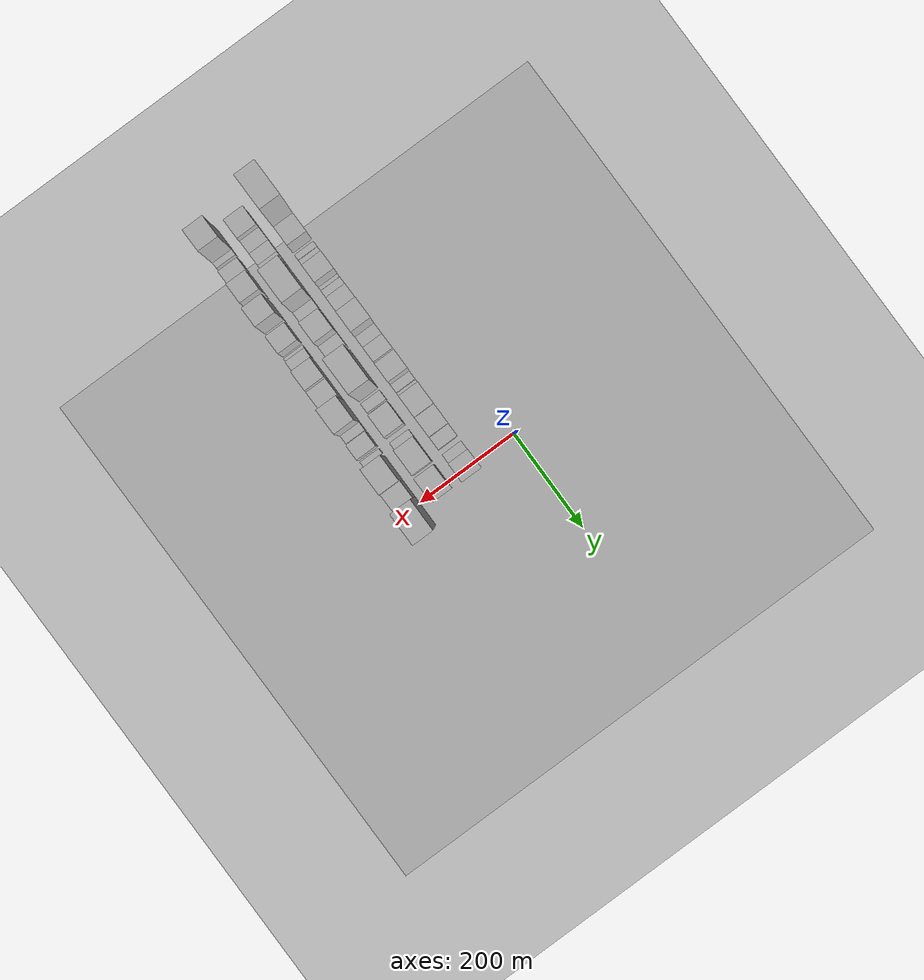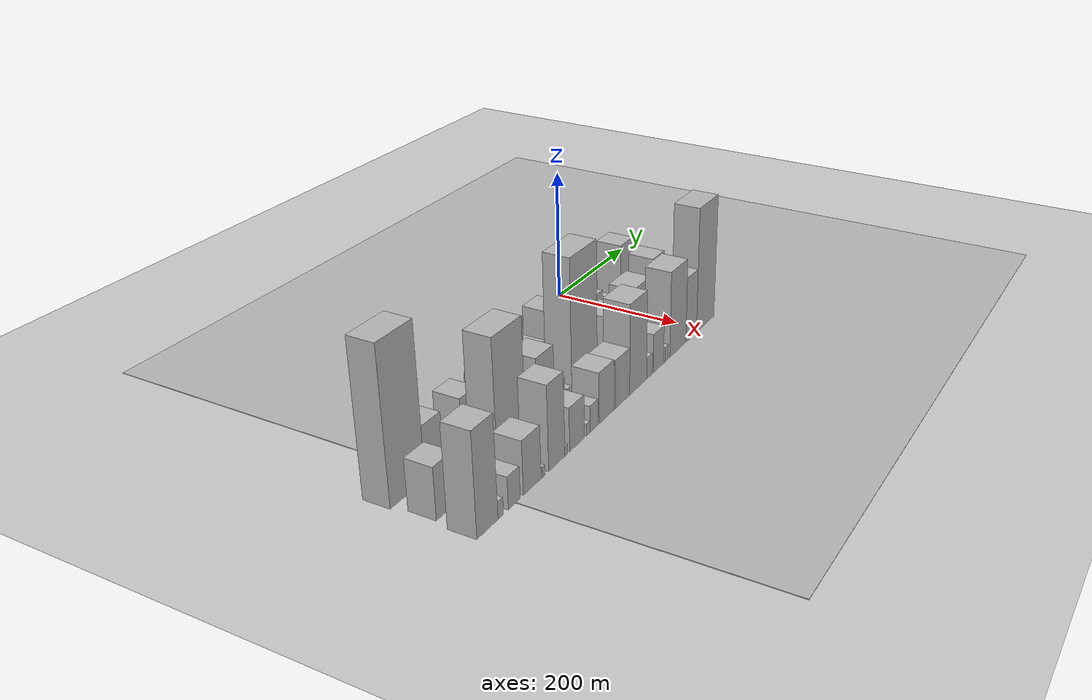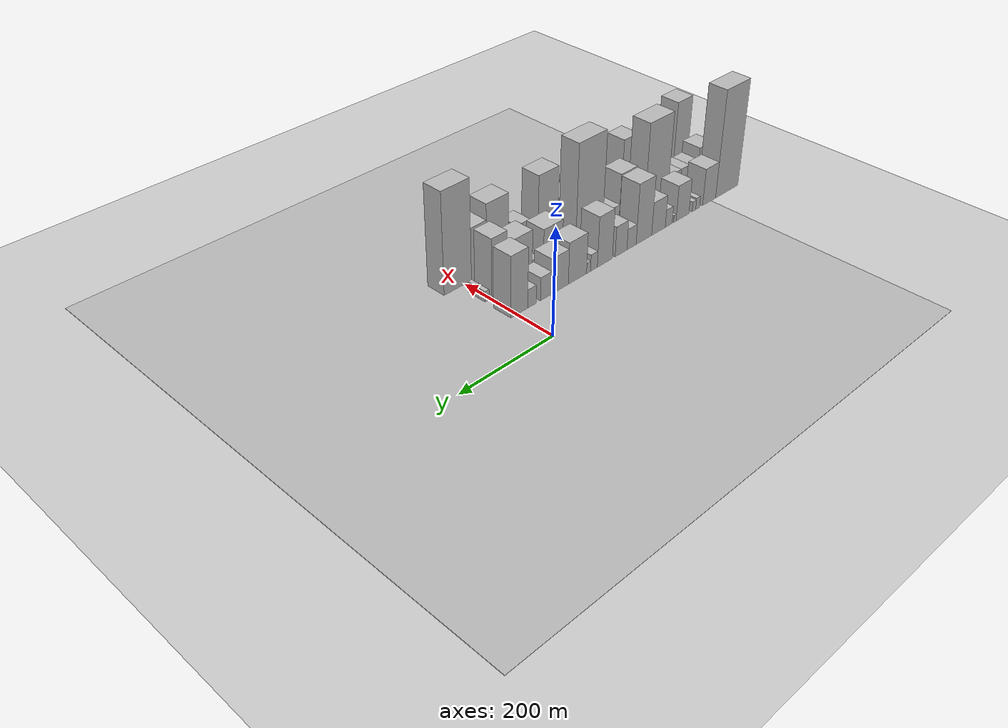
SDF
<sdf version="1.6">
 <world name="default">
  <include><name>ground_plane_1</name><uri>model://HANNAS_ground_plane</uri></include>
  <include>
   <name>ground_plane_2</name>
   <uri>model://HANNAS_ground_plane</uri>
   <pose>100 0 0  0 0 0</pose>
  </include>
  <model name="building_1">
   <static>1</static>
   <pose>100.0000 -546.4433 0 0.000000 0.000000 0.000000</pose>
   <link name="link">
    <pose>0 0 108.00 0 0 0</pose>
    <collision name="collision"><geometry><box><size>40.0000 67.1135 216.0000</size></box></geometry></collision>
    <visual name="visual">
     <cast_shadows>0</cast_shadows>
     <geometry><box><size>40.0000 67.1135 216.0000</size></box></geometry>
     <material>
      <script>
       <uri>model://HANNAS_wall/materials/scripts</uri>
       <uri>model://HANNAS_wall/materials/textures</uri>
       <name>vrc/HANNAS_wall</name>
      </script>
     </material>
    </visual>
   </link>
  </model>
  <model name="building_2">
   <static>1</static>
   <pose>100.0000 -493.9066 0 0.000000 0.000000 0.000000</pose>
   <link name="link">
    <pose>0 0 37.50 0 0 0</pose>
    <collision name="collision"><geometry><box><size>40.0000 37.9599 75.0000</size></box></geometry></collision>
    <visual name="visual">
     <cast_shadows>0</cast_shadows>
     <geometry><box><size>40.0000 37.9599 75.0000</size></box></geometry>
     <material>
      <script>
       <uri>model://HANNAS_wall/materials/scripts</uri>
       <uri>model://HANNAS_wall/materials/textures</uri>
       <name>vrc/HANNAS_wall</name>
      </script>
     </material>
    </visual>
   </link>
  </model>
  <model name="building_3">
   <static>1</static>
   <pose>100.0000 -460.3726 0 0.000000 0.000000 0.000000</pose>
   <link name="link">
    <pose>0 0 12.00 0 0 0</pose>
    <collision name="collision"><geometry><box><size>40.0000 11.1080 24.0000</size></box></geometry></collision>
    <visual name="visual">
     <cast_shadows>0</cast_shadows>
     <geometry><box><size>40.0000 11.1080 24.0000</size></box></geometry>
     <material>
      <script>
       <uri>model://HANNAS_wall/materials/scripts</uri>
       <uri>model://HANNAS_wall/materials/textures</uri>
       <name>vrc/HANNAS_wall</name>
      </script>
     </material>
    </visual>
   </link>
  </model>
  <model name="building_4">
   <static>1</static>
   <pose>100.0000 -449.6545 0 0.000000 0.000000 0.000000</pose>
   <link name="link">
    <pose>0 0 10.50 0 0 0</pose>
    <collision name="collision"><geometry><box><size>40.0000 10.3283 21.0000</size></box></geometry></collision>
    <visual name="visual">
     <cast_shadows>0</cast_shadows>
     <geometry><box><size>40.0000 10.3283 21.0000</size></box></geometry>
     <material>
      <script>
       <uri>model://HANNAS_wall/materials/scripts</uri>
       <uri>model://HANNAS_wall/materials/textures</uri>
       <name>vrc/HANNAS_wall</name>
      </script>
     </material>
    </visual>
   </link>
  </model>
  <model name="building_5">
   <static>1</static>
   <pose>100.0000 -417.2643 0 0.000000 0.000000 0.000000</pose>
   <link name="link">
    <pose>0 0 36.00 0 0 0</pose>
    <collision name="collision"><geometry><box><size>40.0000 36.4522 72.0000</size></box></geometry></collision>
    <visual name="visual">
     <cast_shadows>0</cast_shadows>
     <geometry><box><size>40.0000 36.4522 72.0000</size></box></geometry>
     <material>
      <script>
       <uri>model://HANNAS_wall/materials/scripts</uri>
       <uri>model://HANNAS_wall/materials/textures</uri>
       <name>vrc/HANNAS_wall</name>
      </script>
     </material>
    </visual>
   </link>
  </model>
  <model name="building_6">
   <static>1</static>
   <pose>100.0000 -395.6459 0 0.000000 0.000000 0.000000</pose>
   <link name="link">
    <pose>0 0 7.50 0 0 0</pose>
    <collision name="collision"><geometry><box><size>40.0000 6.7845 15.0000</size></box></geometry></collision>
    <visual name="visual">
     <cast_shadows>0</cast_shadows>
     <geometry><box><size>40.0000 6.7845 15.0000</size></box></geometry>
     <material>
      <script>
       <uri>model://HANNAS_wall/materials/scripts</uri>
       <uri>model://HANNAS_wall/materials/textures</uri>
       <name>vrc/HANNAS_wall</name>
      </script>
     </material>
    </visual>
   </link>
  </model>
  <model name="building_7">
   <static>1</static>
   <pose>100.0000 -378.6369 0 0.000000 0.000000 0.000000</pose>
   <link name="link">
    <pose>0 0 18.00 0 0 0</pose>
    <collision name="collision"><geometry><box><size>40.0000 19.2335 36.0000</size></box></geometry></collision>
    <visual name="visual">
     <cast_shadows>0</cast_shadows>
     <geometry><box><size>40.0000 19.2335 36.0000</size></box></geometry>
     <material>
      <script>
       <uri>model://HANNAS_wall/materials/scripts</uri>
       <uri>model://HANNAS_wall/materials/textures</uri>
       <name>vrc/HANNAS_wall</name>
      </script>
     </material>
    </visual>
   </link>
  </model>
  <model name="building_8">
   <static>1</static>
   <pose>100.0000 -350.5014 0 0.000000 0.000000 0.000000</pose>
   <link name="link">
    <pose>0 0 33.00 0 0 0</pose>
    <collision name="collision"><geometry><box><size>40.0000 37.0376 66.0000</size></box></geometry></collision>
    <visual name="visual">
     <cast_shadows>0</cast_shadows>
     <geometry><box><size>40.0000 37.0376 66.0000</size></box></geometry>
     <material>
      <script>
       <uri>model://HANNAS_wall/materials/scripts</uri>
       <uri>model://HANNAS_wall/materials/textures</uri>
       <name>vrc/HANNAS_wall</name>
      </script>
     </material>
    </visual>
   </link>
  </model>
  <model name="building_9">
   <static>1</static>
   <pose>100.0000 -311.1250 0 0.000000 0.000000 0.000000</pose>
   <link name="link">
    <pose>0 0 60.00 0 0 0</pose>
    <collision name="collision"><geometry><box><size>40.0000 41.7151 120.0000</size></box></geometry></collision>
    <visual name="visual">
     <cast_shadows>0</cast_shadows>
     <geometry><box><size>40.0000 41.7151 120.0000</size></box></geometry>
     <material>
      <script>
       <uri>model://HANNAS_wall/materials/scripts</uri>
       <uri>model://HANNAS_wall/materials/textures</uri>
       <name>vrc/HANNAS_wall</name>
      </script>
     </material>
    </visual>
   </link>
  </model>
  <model name="building_10">
   <static>1</static>
   <pose>100.0000 -278.2052 0 0.000000 0.000000 0.000000</pose>
   <link name="link">
    <pose>0 0 21.00 0 0 0</pose>
    <collision name="collision"><geometry><box><size>40.0000 24.1245 42.0000</size></box></geometry></collision>
    <visual name="visual">
     <cast_shadows>0</cast_shadows>
     <geometry><box><size>40.0000 24.1245 42.0000</size></box></geometry>
     <material>
      <script>
       <uri>model://HANNAS_wall/materials/scripts</uri>
       <uri>model://HANNAS_wall/materials/textures</uri>
       <name>vrc/HANNAS_wall</name>
      </script>
     </material>
    </visual>
   </link>
  </model>
  <model name="building_11">
   <static>1</static>
   <pose>100.0000 -250.9909 0 0.000000 0.000000 0.000000</pose>
   <link name="link">
    <pose>0 0 30.00 0 0 0</pose>
    <collision name="collision"><geometry><box><size>40.0000 30.3041 60.0000</size></box></geometry></collision>
    <visual name="visual">
     <cast_shadows>0</cast_shadows>
     <geometry><box><size>40.0000 30.3041 60.0000</size></box></geometry>
     <material>
      <script>
       <uri>model://HANNAS_wall/materials/scripts</uri>
       <uri>model://HANNAS_wall/materials/textures</uri>
       <name>vrc/HANNAS_wall</name>
      </script>
     </material>
    </visual>
   </link>
  </model>
  <model name="building_12">
   <static>1</static>
   <pose>100.0000 -209.8831 0 0.000000 0.000000 0.000000</pose>
   <link name="link">
    <pose>0 0 49.50 0 0 0</pose>
    <collision name="collision"><geometry><box><size>40.0000 37.9116 99.0000</size></box></geometry></collision>
    <visual name="visual">
     <cast_shadows>0</cast_shadows>
     <geometry><box><size>40.0000 37.9116 99.0000</size></box></geometry>
     <material>
      <script>
       <uri>model://HANNAS_wall/materials/scripts</uri>
       <uri>model://HANNAS_wall/materials/textures</uri>
       <name>vrc/HANNAS_wall</name>
      </script>
     </material>
    </visual>
   </link>
  </model>
  <model name="building_13">
   <static>1</static>
   <pose>100.0000 -182.4297 0 0.000000 0.000000 0.000000</pose>
   <link name="link">
    <pose>0 0 16.50 0 0 0</pose>
    <collision name="collision"><geometry><box><size>40.0000 16.9952 33.0000</size></box></geometry></collision>
    <visual name="visual">
     <cast_shadows>0</cast_shadows>
     <geometry><box><size>40.0000 16.9952 33.0000</size></box></geometry>
     <material>
      <script>
       <uri>model://HANNAS_wall/materials/scripts</uri>
       <uri>model://HANNAS_wall/materials/textures</uri>
       <name>vrc/HANNAS_wall</name>
      </script>
     </material>
    </visual>
   </link>
  </model>
  <model name="building_14">
   <static>1</static>
   <pose>100.0000 -169.0373 0 0.000000 0.000000 0.000000</pose>
   <link name="link">
    <pose>0 0 10.50 0 0 0</pose>
    <collision name="collision"><geometry><box><size>40.0000 9.7896 21.0000</size></box></geometry></collision>
    <visual name="visual">
     <cast_shadows>0</cast_shadows>
     <geometry><box><size>40.0000 9.7896 21.0000</size></box></geometry>
     <material>
      <script>
       <uri>model://HANNAS_wall/materials/scripts</uri>
       <uri>model://HANNAS_wall/materials/textures</uri>
       <name>vrc/HANNAS_wall</name>
      </script>
     </material>
    </visual>
   </link>
  </model>
  <model name="building_15">
   <static>1</static>
   <pose>100.0000 -141.9730 0 0.000000 0.000000 0.000000</pose>
   <link name="link">
    <pose>0 0 40.50 0 0 0</pose>
    <collision name="collision"><geometry><box><size>40.0000 44.3388 81.0000</size></box></geometry></collision>
    <visual name="visual">
     <cast_shadows>0</cast_shadows>
     <geometry><box><size>40.0000 44.3388 81.0000</size></box></geometry>
     <material>
      <script>
       <uri>model://HANNAS_wall/materials/scripts</uri>
       <uri>model://HANNAS_wall/materials/textures</uri>
       <name>vrc/HANNAS_wall</name>
      </script>
     </material>
    </visual>
   </link>
  </model>
  <model name="building_16">
   <static>1</static>
   <pose>100.0000 -99.6615 0 0.000000 0.000000 0.000000</pose>
   <link name="link">
    <pose>0 0 34.50 0 0 0</pose>
    <collision name="collision"><geometry><box><size>40.0000 40.2842 69.0000</size></box></geometry></collision>
    <visual name="visual">
     <cast_shadows>0</cast_shadows>
     <geometry><box><size>40.0000 40.2842 69.0000</size></box></geometry>
     <material>
      <script>
       <uri>model://HANNAS_wall/materials/scripts</uri>
       <uri>model://HANNAS_wall/materials/textures</uri>
       <name>vrc/HANNAS_wall</name>
      </script>
     </material>
    </visual>
   </link>
  </model>
  <model name="building_17">
   <static>1</static>
   <pose>100.0000 -66.7461 0 0.000000 0.000000 0.000000</pose>
   <link name="link">
    <pose>0 0 22.50 0 0 0</pose>
    <collision name="collision"><geometry><box><size>40.0000 25.5467 45.0000</size></box></geometry></collision>
    <visual name="visual">
     <cast_shadows>0</cast_shadows>
     <geometry><box><size>40.0000 25.5467 45.0000</size></box></geometry>
     <material>
      <script>
       <uri>model://HANNAS_wall/materials/scripts</uri>
       <uri>model://HANNAS_wall/materials/textures</uri>
       <name>vrc/HANNAS_wall</name>
      </script>
     </material>
    </visual>
   </link>
  </model>
  <model name="building_18">
   <static>1</static>
   <pose>100.0000 -34.4902 0 0.000000 0.000000 0.000000</pose>
   <link name="link">
    <pose>0 0 18.00 0 0 0</pose>
    <collision name="collision"><geometry><box><size>40.0000 18.9651 36.0000</size></box></geometry></collision>
    <visual name="visual">
     <cast_shadows>0</cast_shadows>
     <geometry><box><size>40.0000 18.9651 36.0000</size></box></geometry>
     <material>
      <script>
       <uri>model://HANNAS_wall/materials/scripts</uri>
       <uri>model://HANNAS_wall/materials/textures</uri>
       <name>vrc/HANNAS_wall</name>
      </script>
     </material>
    </visual>
   </link>
  </model>
  <model name="building_19">
   <static>1</static>
   <pose>100.0000 -6.0359 0 0.000000 0.000000 0.000000</pose>
   <link name="link">
    <pose>0 0 58.50 0 0 0</pose>
    <collision name="collision"><geometry><box><size>40.0000 37.9435 117.0000</size></box></geometry></collision>
    <visual name="visual">
     <cast_shadows>0</cast_shadows>
     <geometry><box><size>40.0000 37.9435 117.0000</size></box></geometry>
     <material>
      <script>
       <uri>model://HANNAS_wall/materials/scripts</uri>
       <uri>model://HANNAS_wall/materials/textures</uri>
       <name>vrc/HANNAS_wall</name>
      </script>
     </material>
    </visual>
   </link>
  </model>
  <model name="building_39">
   <static>1</static>
   <pose>160.0000 -553.6835 0 0.000000 0.000000 0.000000</pose>
   <link name="link">
    <pose>0 0 36.00 0 0 0</pose>
    <collision name="collision"><geometry><box><size>40.0000 38.6329 72.0000</size></box></geometry></collision>
    <visual name="visual">
     <cast_shadows>0</cast_shadows>
     <geometry><box><size>40.0000 38.6329 72.0000</size></box></geometry>
     <material>
      <script>
       <uri>model://HANNAS_wall/materials/scripts</uri>
       <uri>model://HANNAS_wall/materials/textures</uri>
       <name>vrc/HANNAS_wall</name>
      </script>
     </material>
    </visual>
   </link>
  </model>
  <model name="building_40">
   <static>1</static>
   <pose>160.0000 -521.0328 0 0.000000 0.000000 0.000000</pose>
   <link name="link">
    <pose>0 0 24.00 0 0 0</pose>
    <collision name="collision"><geometry><box><size>40.0000 26.6685 48.0000</size></box></geometry></collision>
    <visual name="visual">
     <cast_shadows>0</cast_shadows>
     <geometry><box><size>40.0000 26.6685 48.0000</size></box></geometry>
     <material>
      <script>
       <uri>model://HANNAS_wall/materials/scripts</uri>
       <uri>model://HANNAS_wall/materials/textures</uri>
       <name>vrc/HANNAS_wall</name>
      </script>
     </material>
    </visual>
   </link>
  </model>
  <model name="building_41">
   <static>1</static>
   <pose>160.0000 -495.6053 0 0.000000 0.000000 0.000000</pose>
   <link name="link">
    <pose>0 0 24.00 0 0 0</pose>
    <collision name="collision"><geometry><box><size>40.0000 24.1866 48.0000</size></box></geometry></collision>
    <visual name="visual">
     <cast_shadows>0</cast_shadows>
     <geometry><box><size>40.0000 24.1866 48.0000</size></box></geometry>
     <material>
      <script>
       <uri>model://HANNAS_wall/materials/scripts</uri>
       <uri>model://HANNAS_wall/materials/textures</uri>
       <name>vrc/HANNAS_wall</name>
      </script>
     </material>
    </visual>
   </link>
  </model>
  <model name="building_42">
   <static>1</static>
   <pose>160.0000 -469.9660 0 0.000000 0.000000 0.000000</pose>
   <link name="link">
    <pose>0 0 24.00 0 0 0</pose>
    <collision name="collision"><geometry><box><size>40.0000 27.0920 48.0000</size></box></geometry></collision>
    <visual name="visual">
     <cast_shadows>0</cast_shadows>
     <geometry><box><size>40.0000 27.0920 48.0000</size></box></geometry>
     <material>
      <script>
       <uri>model://HANNAS_wall/materials/scripts</uri>
       <uri>model://HANNAS_wall/materials/textures</uri>
       <name>vrc/HANNAS_wall</name>
      </script>
     </material>
    </visual>
   </link>
  </model>
  <model name="building_43">
   <static>1</static>
   <pose>160.0000 -416.1447 0 0.000000 0.000000 0.000000</pose>
   <link name="link">
    <pose>0 0 88.50 0 0 0</pose>
    <collision name="collision"><geometry><box><size>40.0000 64.5504 177.0000</size></box></geometry></collision>
    <visual name="visual">
     <cast_shadows>0</cast_shadows>
     <geometry><box><size>40.0000 64.5504 177.0000</size></box></geometry>
     <material>
      <script>
       <uri>model://HANNAS_wall/materials/scripts</uri>
       <uri>model://HANNAS_wall/materials/textures</uri>
       <name>vrc/HANNAS_wall</name>
      </script>
     </material>
    </visual>
   </link>
  </model>
  <model name="building_44">
   <static>1</static>
   <pose>160.0000 -369.8467 0 0.000000 0.000000 0.000000</pose>
   <link name="link">
    <pose>0 0 25.50 0 0 0</pose>
    <collision name="collision"><geometry><box><size>40.0000 28.0455 51.0000</size></box></geometry></collision>
    <visual name="visual">
     <cast_shadows>0</cast_shadows>
     <geometry><box><size>40.0000 28.0455 51.0000</size></box></geometry>
     <material>
      <script>
       <uri>model://HANNAS_wall/materials/scripts</uri>
       <uri>model://HANNAS_wall/materials/textures</uri>
       <name>vrc/HANNAS_wall</name>
      </script>
     </material>
    </visual>
   </link>
  </model>
  <model name="building_45">
   <static>1</static>
   <pose>160.0000 -334.8662 0 0.000000 0.000000 0.000000</pose>
   <link name="link">
    <pose>0 0 52.50 0 0 0</pose>
    <collision name="collision"><geometry><box><size>40.0000 41.9155 105.0000</size></box></geometry></collision>
    <visual name="visual">
     <cast_shadows>0</cast_shadows>
     <geometry><box><size>40.0000 41.9155 105.0000</size></box></geometry>
     <material>
      <script>
       <uri>model://HANNAS_wall/materials/scripts</uri>
       <uri>model://HANNAS_wall/materials/textures</uri>
       <name>vrc/HANNAS_wall</name>
      </script>
     </material>
    </visual>
   </link>
  </model>
  <model name="building_46">
   <static>1</static>
   <pose>160.0000 -301.0513 0 0.000000 0.000000 0.000000</pose>
   <link name="link">
    <pose>0 0 22.50 0 0 0</pose>
    <collision name="collision"><geometry><box><size>40.0000 25.7144 45.0000</size></box></geometry></collision>
    <visual name="visual">
     <cast_shadows>0</cast_shadows>
     <geometry><box><size>40.0000 25.7144 45.0000</size></box></geometry>
     <material>
      <script>
       <uri>model://HANNAS_wall/materials/scripts</uri>
       <uri>model://HANNAS_wall/materials/textures</uri>
       <name>vrc/HANNAS_wall</name>
      </script>
     </material>
    </visual>
   </link>
  </model>
  <model name="building_47">
   <static>1</static>
   <pose>160.0000 -275.7168 0 0.000000 0.000000 0.000000</pose>
   <link name="link">
    <pose>0 0 12.00 0 0 0</pose>
    <collision name="collision"><geometry><box><size>40.0000 10.9546 24.0000</size></box></geometry></collision>
    <visual name="visual">
     <cast_shadows>0</cast_shadows>
     <geometry><box><size>40.0000 10.9546 24.0000</size></box></geometry>
     <material>
      <script>
       <uri>model://HANNAS_wall/materials/scripts</uri>
       <uri>model://HANNAS_wall/materials/textures</uri>
       <name>vrc/HANNAS_wall</name>
      </script>
     </material>
    </visual>
   </link>
  </model>
  <model name="building_48">
   <static>1</static>
   <pose>160.0000 -236.1369 0 0.000000 0.000000 0.000000</pose>
   <link name="link">
    <pose>0 0 103.50 0 0 0</pose>
    <collision name="collision"><geometry><box><size>40.0000 68.2053 207.0000</size></box></geometry></collision>
    <visual name="visual">
     <cast_shadows>0</cast_shadows>
     <geometry><box><size>40.0000 68.2053 207.0000</size></box></geometry>
     <material>
      <script>
       <uri>model://HANNAS_wall/materials/scripts</uri>
       <uri>model://HANNAS_wall/materials/textures</uri>
       <name>vrc/HANNAS_wall</name>
      </script>
     </material>
    </visual>
   </link>
  </model>
  <model name="building_49">
   <static>1</static>
   <pose>160.0000 -185.4264 0 0.000000 0.000000 0.000000</pose>
   <link name="link">
    <pose>0 0 16.50 0 0 0</pose>
    <collision name="collision"><geometry><box><size>40.0000 19.2157 33.0000</size></box></geometry></collision>
    <visual name="visual">
     <cast_shadows>0</cast_shadows>
     <geometry><box><size>40.0000 19.2157 33.0000</size></box></geometry>
     <material>
      <script>
       <uri>model://HANNAS_wall/materials/scripts</uri>
       <uri>model://HANNAS_wall/materials/textures</uri>
       <name>vrc/HANNAS_wall</name>
      </script>
     </material>
    </visual>
   </link>
  </model>
  <model name="building_50">
   <static>1</static>
   <pose>160.0000 -145.8420 0 0.000000 0.000000 0.000000</pose>
   <link name="link">
    <pose>0 0 39.00 0 0 0</pose>
    <collision name="collision"><geometry><box><size>40.0000 45.9530 78.0000</size></box></geometry></collision>
    <visual name="visual">
     <cast_shadows>0</cast_shadows>
     <geometry><box><size>40.0000 45.9530 78.0000</size></box></geometry>
     <material>
      <script>
       <uri>model://HANNAS_wall/materials/scripts</uri>
       <uri>model://HANNAS_wall/materials/textures</uri>
       <name>vrc/HANNAS_wall</name>
      </script>
     </material>
    </visual>
   </link>
  </model>
  <model name="building_51">
   <static>1</static>
   <pose>160.0000 -104.5533 0 0.000000 0.000000 0.000000</pose>
   <link name="link">
    <pose>0 0 15.00 0 0 0</pose>
    <collision name="collision"><geometry><box><size>40.0000 16.6244 30.0000</size></box></geometry></collision>
    <visual name="visual">
     <cast_shadows>0</cast_shadows>
     <geometry><box><size>40.0000 16.6244 30.0000</size></box></geometry>
     <material>
      <script>
       <uri>model://HANNAS_wall/materials/scripts</uri>
       <uri>model://HANNAS_wall/materials/textures</uri>
       <name>vrc/HANNAS_wall</name>
      </script>
     </material>
    </visual>
   </link>
  </model>
  <model name="building_52">
   <static>1</static>
   <pose>160.0000 -70.3179 0 0.000000 0.000000 0.000000</pose>
   <link name="link">
    <pose>0 0 45.00 0 0 0</pose>
    <collision name="collision"><geometry><box><size>40.0000 51.8465 90.0000</size></box></geometry></collision>
    <visual name="visual">
     <cast_shadows>0</cast_shadows>
     <geometry><box><size>40.0000 51.8465 90.0000</size></box></geometry>
     <material>
      <script>
       <uri>model://HANNAS_wall/materials/scripts</uri>
       <uri>model://HANNAS_wall/materials/textures</uri>
       <name>vrc/HANNAS_wall</name>
      </script>
     </material>
    </visual>
   </link>
  </model>
  <model name="building_53">
   <static>1</static>
   <pose>160.0000 -20.6945 0 0.000000 0.000000 0.000000</pose>
   <link name="link">
    <pose>0 0 57.00 0 0 0</pose>
    <collision name="collision"><geometry><box><size>40.0000 35.4002 114.0000</size></box></geometry></collision>
    <visual name="visual">
     <cast_shadows>0</cast_shadows>
     <geometry><box><size>40.0000 35.4002 114.0000</size></box></geometry>
     <material>
      <script>
       <uri>model://HANNAS_wall/materials/scripts</uri>
       <uri>model://HANNAS_wall/materials/textures</uri>
       <name>vrc/HANNAS_wall</name>
      </script>
     </material>
    </visual>
   </link>
  </model>
  <model name="building_54">
   <static>1</static>
   <pose>160.0000 7.2912 0 0.000000 0.000000 0.000000</pose>
   <link name="link">
    <pose>0 0 10.50 0 0 0</pose>
    <collision name="collision"><geometry><box><size>40.0000 8.5712 21.0000</size></box></geometry></collision>
    <visual name="visual">
     <cast_shadows>0</cast_shadows>
     <geometry><box><size>40.0000 8.5712 21.0000</size></box></geometry>
     <material>
      <script>
       <uri>model://HANNAS_wall/materials/scripts</uri>
       <uri>model://HANNAS_wall/materials/textures</uri>
       <name>vrc/HANNAS_wall</name>
      </script>
     </material>
    </visual>
   </link>
  </model>
  <model name="building_72">
   <static>1</static>
   <pose>220.0000 -558.7600 0 0.000000 0.000000 0.000000</pose>
   <link name="link">
    <pose>0 0 70.50 0 0 0</pose>
    <collision name="collision"><geometry><box><size>40.0000 42.4801 141.0000</size></box></geometry></collision>
    <visual name="visual">
     <cast_shadows>0</cast_shadows>
     <geometry><box><size>40.0000 42.4801 141.0000</size></box></geometry>
     <material>
      <script>
       <uri>model://HANNAS_wall/materials/scripts</uri>
       <uri>model://HANNAS_wall/materials/textures</uri>
       <name>vrc/HANNAS_wall</name>
      </script>
     </material>
    </visual>
   </link>
  </model>
  <model name="building_73">
   <static>1</static>
   <pose>220.0000 -531.8882 0 0.000000 0.000000 0.000000</pose>
   <link name="link">
    <pose>0 0 12.00 0 0 0</pose>
    <collision name="collision"><geometry><box><size>40.0000 11.2635 24.0000</size></box></geometry></collision>
    <visual name="visual">
     <cast_shadows>0</cast_shadows>
     <geometry><box><size>40.0000 11.2635 24.0000</size></box></geometry>
     <material>
      <script>
       <uri>model://HANNAS_wall/materials/scripts</uri>
       <uri>model://HANNAS_wall/materials/textures</uri>
       <name>vrc/HANNAS_wall</name>
      </script>
     </material>
    </visual>
   </link>
  </model>
  <model name="building_74">
   <static>1</static>
   <pose>220.0000 -503.5774 0 0.000000 0.000000 0.000000</pose>
   <link name="link">
    <pose>0 0 22.50 0 0 0</pose>
    <collision name="collision"><geometry><box><size>40.0000 25.3581 45.0000</size></box></geometry></collision>
    <visual name="visual">
     <cast_shadows>0</cast_shadows>
     <geometry><box><size>40.0000 25.3581 45.0000</size></box></geometry>
     <material>
      <script>
       <uri>model://HANNAS_wall/materials/scripts</uri>
       <uri>model://HANNAS_wall/materials/textures</uri>
       <name>vrc/HANNAS_wall</name>
      </script>
     </material>
    </visual>
   </link>
  </model>
  <model name="building_75">
   <static>1</static>
   <pose>220.0000 -464.2822 0 0.000000 0.000000 0.000000</pose>
   <link name="link">
    <pose>0 0 37.50 0 0 0</pose>
    <collision name="collision"><geometry><box><size>40.0000 39.2322 75.0000</size></box></geometry></collision>
    <visual name="visual">
     <cast_shadows>0</cast_shadows>
     <geometry><box><size>40.0000 39.2322 75.0000</size></box></geometry>
     <material>
      <script>
       <uri>model://HANNAS_wall/materials/scripts</uri>
       <uri>model://HANNAS_wall/materials/textures</uri>
       <name>vrc/HANNAS_wall</name>
      </script>
     </material>
    </visual>
   </link>
  </model>
  <model name="building_76">
   <static>1</static>
   <pose>220.0000 -438.5495 0 0.000000 0.000000 0.000000</pose>
   <link name="link">
    <pose>0 0 7.50 0 0 0</pose>
    <collision name="collision"><geometry><box><size>40.0000 6.2333 15.0000</size></box></geometry></collision>
    <visual name="visual">
     <cast_shadows>0</cast_shadows>
     <geometry><box><size>40.0000 6.2333 15.0000</size></box></geometry>
     <material>
      <script>
       <uri>model://HANNAS_wall/materials/scripts</uri>
       <uri>model://HANNAS_wall/materials/textures</uri>
       <name>vrc/HANNAS_wall</name>
      </script>
     </material>
    </visual>
   </link>
  </model>
  <model name="building_77">
   <static>1</static>
   <pose>220.0000 -408.3948 0 0.000000 0.000000 0.000000</pose>
   <link name="link">
    <pose>0 0 60.00 0 0 0</pose>
    <collision name="collision"><geometry><box><size>40.0000 38.0760 120.0000</size></box></geometry></collision>
    <visual name="visual">
     <cast_shadows>0</cast_shadows>
     <geometry><box><size>40.0000 38.0760 120.0000</size></box></geometry>
     <material>
      <script>
       <uri>model://HANNAS_wall/materials/scripts</uri>
       <uri>model://HANNAS_wall/materials/textures</uri>
       <name>vrc/HANNAS_wall</name>
      </script>
     </material>
    </visual>
   </link>
  </model>
  <model name="building_78">
   <static>1</static>
   <pose>220.0000 -386.0397 0 0.000000 0.000000 0.000000</pose>
   <link name="link">
    <pose>0 0 7.50 0 0 0</pose>
    <collision name="collision"><geometry><box><size>40.0000 6.6344 15.0000</size></box></geometry></collision>
    <visual name="visual">
     <cast_shadows>0</cast_shadows>
     <geometry><box><size>40.0000 6.6344 15.0000</size></box></geometry>
     <material>
      <script>
       <uri>model://HANNAS_wall/materials/scripts</uri>
       <uri>model://HANNAS_wall/materials/textures</uri>
       <name>vrc/HANNAS_wall</name>
      </script>
     </material>
    </visual>
   </link>
  </model>
  <model name="building_79">
   <static>1</static>
   <pose>220.0000 -359.5246 0 0.000000 0.000000 0.000000</pose>
   <link name="link">
    <pose>0 0 31.50 0 0 0</pose>
    <collision name="collision"><geometry><box><size>40.0000 36.3958 63.0000</size></box></geometry></collision>
    <visual name="visual">
     <cast_shadows>0</cast_shadows>
     <geometry><box><size>40.0000 36.3958 63.0000</size></box></geometry>
     <material>
      <script>
       <uri>model://HANNAS_wall/materials/scripts</uri>
       <uri>model://HANNAS_wall/materials/textures</uri>
       <name>vrc/HANNAS_wall</name>
      </script>
     </material>
    </visual>
   </link>
  </model>
  <model name="building_80">
   <static>1</static>
   <pose>220.0000 -331.8742 0 0.000000 0.000000 0.000000</pose>
   <link name="link">
    <pose>0 0 9.00 0 0 0</pose>
    <collision name="collision"><geometry><box><size>40.0000 8.9049 18.0000</size></box></geometry></collision>
    <visual name="visual">
     <cast_shadows>0</cast_shadows>
     <geometry><box><size>40.0000 8.9049 18.0000</size></box></geometry>
     <material>
      <script>
       <uri>model://HANNAS_wall/materials/scripts</uri>
       <uri>model://HANNAS_wall/materials/textures</uri>
       <name>vrc/HANNAS_wall</name>
      </script>
     </material>
    </visual>
   </link>
  </model>
  <model name="building_81">
   <static>1</static>
   <pose>220.0000 -316.9694 0 0.000000 0.000000 0.000000</pose>
   <link name="link">
    <pose>0 0 19.50 0 0 0</pose>
    <collision name="collision"><geometry><box><size>40.0000 20.9047 39.0000</size></box></geometry></collision>
    <visual name="visual">
     <cast_shadows>0</cast_shadows>
     <geometry><box><size>40.0000 20.9047 39.0000</size></box></geometry>
     <material>
      <script>
       <uri>model://HANNAS_wall/materials/scripts</uri>
       <uri>model://HANNAS_wall/materials/textures</uri>
       <name>vrc/HANNAS_wall</name>
      </script>
     </material>
    </visual>
   </link>
  </model>
  <model name="building_82">
   <static>1</static>
   <pose>220.0000 -283.6856 0 0.000000 0.000000 0.000000</pose>
   <link name="link">
    <pose>0 0 37.50 0 0 0</pose>
    <collision name="collision"><geometry><box><size>40.0000 39.6629 75.0000</size></box></geometry></collision>
    <visual name="visual">
     <cast_shadows>0</cast_shadows>
     <geometry><box><size>40.0000 39.6629 75.0000</size></box></geometry>
     <material>
      <script>
       <uri>model://HANNAS_wall/materials/scripts</uri>
       <uri>model://HANNAS_wall/materials/textures</uri>
       <name>vrc/HANNAS_wall</name>
      </script>
     </material>
    </visual>
   </link>
  </model>
  <model name="building_83">
   <static>1</static>
   <pose>220.0000 -240.8507 0 0.000000 0.000000 0.000000</pose>
   <link name="link">
    <pose>0 0 36.00 0 0 0</pose>
    <collision name="collision"><geometry><box><size>40.0000 40.0069 72.0000</size></box></geometry></collision>
    <visual name="visual">
     <cast_shadows>0</cast_shadows>
     <geometry><box><size>40.0000 40.0069 72.0000</size></box></geometry>
     <material>
      <script>
       <uri>model://HANNAS_wall/materials/scripts</uri>
       <uri>model://HANNAS_wall/materials/textures</uri>
       <name>vrc/HANNAS_wall</name>
      </script>
     </material>
    </visual>
   </link>
  </model>
  <model name="building_84">
   <static>1</static>
   <pose>220.0000 -196.3805 0 0.000000 0.000000 0.000000</pose>
   <link name="link">
    <pose>0 0 67.50 0 0 0</pose>
    <collision name="collision"><geometry><box><size>40.0000 48.9335 135.0000</size></box></geometry></collision>
    <visual name="visual">
     <cast_shadows>0</cast_shadows>
     <geometry><box><size>40.0000 48.9335 135.0000</size></box></geometry>
     <material>
      <script>
       <uri>model://HANNAS_wall/materials/scripts</uri>
       <uri>model://HANNAS_wall/materials/textures</uri>
       <name>vrc/HANNAS_wall</name>
      </script>
     </material>
    </visual>
   </link>
  </model>
  <model name="building_85">
   <static>1</static>
   <pose>220.0000 -163.4614 0 0.000000 0.000000 0.000000</pose>
   <link name="link">
    <pose>0 0 16.50 0 0 0</pose>
    <collision name="collision"><geometry><box><size>40.0000 16.9048 33.0000</size></box></geometry></collision>
    <visual name="visual">
     <cast_shadows>0</cast_shadows>
     <geometry><box><size>40.0000 16.9048 33.0000</size></box></geometry>
     <material>
      <script>
       <uri>model://HANNAS_wall/materials/scripts</uri>
       <uri>model://HANNAS_wall/materials/textures</uri>
       <name>vrc/HANNAS_wall</name>
      </script>
     </material>
    </visual>
   </link>
  </model>
  <model name="building_86">
   <static>1</static>
   <pose>220.0000 -136.4566 0 0.000000 0.000000 0.000000</pose>
   <link name="link">
    <pose>0 0 30.00 0 0 0</pose>
    <collision name="collision"><geometry><box><size>40.0000 31.1047 60.0000</size></box></geometry></collision>
    <visual name="visual">
     <cast_shadows>0</cast_shadows>
     <geometry><box><size>40.0000 31.1047 60.0000</size></box></geometry>
     <material>
      <script>
       <uri>model://HANNAS_wall/materials/scripts</uri>
       <uri>model://HANNAS_wall/materials/textures</uri>
       <name>vrc/HANNAS_wall</name>
      </script>
     </material>
    </visual>
   </link>
  </model>
  <model name="building_87">
   <static>1</static>
   <pose>220.0000 -111.6052 0 0.000000 0.000000 0.000000</pose>
   <link name="link">
    <pose>0 0 12.00 0 0 0</pose>
    <collision name="collision"><geometry><box><size>40.0000 10.5981 24.0000</size></box></geometry></collision>
    <visual name="visual">
     <cast_shadows>0</cast_shadows>
     <geometry><box><size>40.0000 10.5981 24.0000</size></box></geometry>
     <material>
      <script>
       <uri>model://HANNAS_wall/materials/scripts</uri>
       <uri>model://HANNAS_wall/materials/textures</uri>
       <name>vrc/HANNAS_wall</name>
      </script>
     </material>
    </visual>
   </link>
  </model>
  <model name="building_88">
   <static>1</static>
   <pose>220.0000 -75.5158 0 0.000000 0.000000 0.000000</pose>
   <link name="link">
    <pose>0 0 66.00 0 0 0</pose>
    <collision name="collision"><geometry><box><size>40.0000 51.5807 132.0000</size></box></geometry></collision>
    <visual name="visual">
     <cast_shadows>0</cast_shadows>
     <geometry><box><size>40.0000 51.5807 132.0000</size></box></geometry>
     <material>
      <script>
       <uri>model://HANNAS_wall/materials/scripts</uri>
       <uri>model://HANNAS_wall/materials/textures</uri>
       <name>vrc/HANNAS_wall</name>
      </script>
     </material>
    </visual>
   </link>
  </model>
  <model name="building_89">
   <static>1</static>
   <pose>220.0000 -32.1170 0 0.000000 0.000000 0.000000</pose>
   <link name="link">
    <pose>0 0 51.00 0 0 0</pose>
    <collision name="collision"><geometry><box><size>40.0000 35.2169 102.0000</size></box></geometry></collision>
    <visual name="visual">
     <cast_shadows>0</cast_shadows>
     <geometry><box><size>40.0000 35.2169 102.0000</size></box></geometry>
     <material>
      <script>
       <uri>model://HANNAS_wall/materials/scripts</uri>
       <uri>model://HANNAS_wall/materials/textures</uri>
       <name>vrc/HANNAS_wall</name>
      </script>
     </material>
    </visual>
   </link>
  </model>
  <model name="building_90">
   <static>1</static>
   <pose>220.0000 15.9270 0 0.000000 0.000000 0.000000</pose>
   <link name="link">
    <pose>0 0 97.50 0 0 0</pose>
    <collision name="collision"><geometry><box><size>40.0000 60.8711 195.0000</size></box></geometry></collision>
    <visual name="visual">
     <cast_shadows>0</cast_shadows>
     <geometry><box><size>40.0000 60.8711 195.0000</size></box></geometry>
     <material>
      <script>
       <uri>model://HANNAS_wall/materials/scripts</uri>
       <uri>model://HANNAS_wall/materials/textures</uri>
       <name>vrc/HANNAS_wall</name>
      </script>
     </material>
    </visual>
   </link>
  </model>
 </world>
</sdf>
